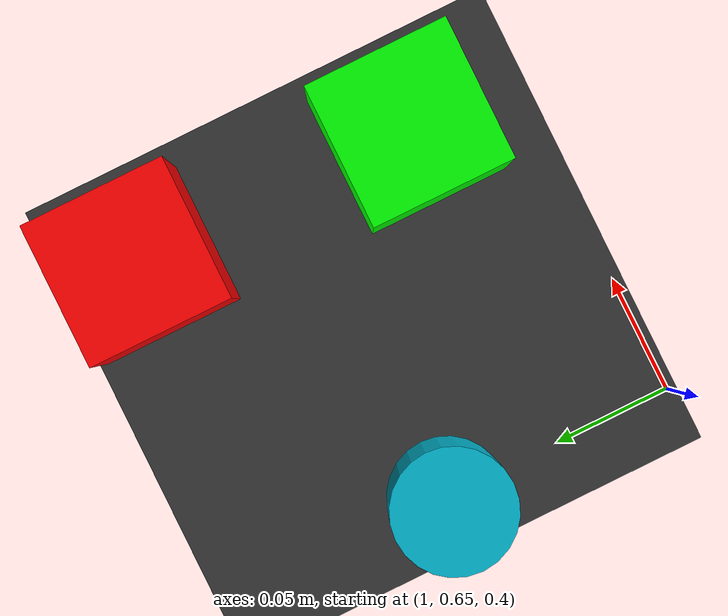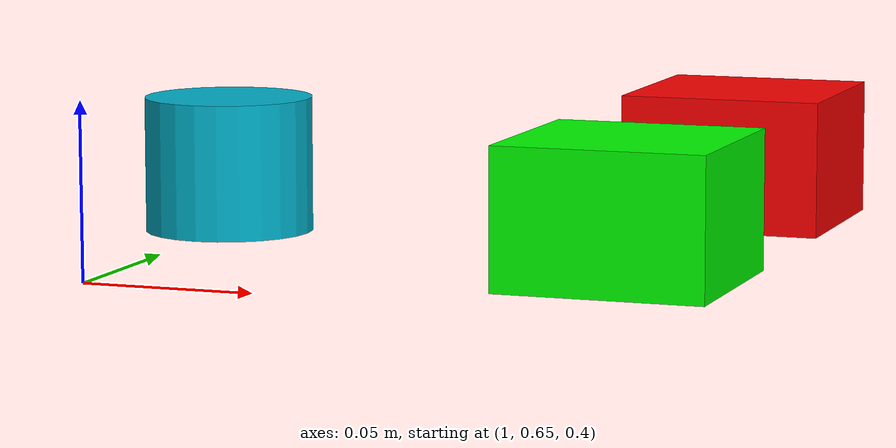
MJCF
<?xml version="1.0" encoding="utf-8"?>
<mujoco>
	<compiler angle="radian" coordinate="local" meshdir="../stls/fetch" texturedir="../textures"></compiler>
	<option timestep="0.002">
		<flag warmstart="enable"></flag>
	</option>
     <visual>
        <map znear="0.001" zfar="0.2"></map>
    </visual>
    <asset>
        <texture type="skybox" builtin="gradient" rgb1="0.44 0.85 0.56" rgb2="0.46 0.87 0.58" width="32" height="32"></texture>
        <texture name="texture_block" file="block.png" gridsize="3 4" gridlayout=".U..LFRB.D.."></texture>

        <material name="floor_mat" specular="0" shininess="0.5" reflectance="0" rgba="0.2 0.2 0.2 1"></material>
        <material name="table_mat" specular="0" shininess="0.5" reflectance="0" rgba="0.2 0.2 0.2 1"></material>
        <material name="block_mat" specular="0" shininess="0.5" reflectance="0" rgba="0.2 0.2 0.2 1"></material>
        <material name="puck_mat" specular="0" shininess="0.5" reflectance="0" rgba="0.2 0.2 0.2 1"></material>
        <material name="robot0:geomMat" shininess="0.03" specular="0.4"></material>
        <material name="robot0:gripper_finger_mat" shininess="0.03" specular="0.4" reflectance="0"></material>
        <material name="robot0:gripper_mat" shininess="0.03" specular="0.4" reflectance="0"></material>
        <material name="robot0:arm_mat" shininess="0.03" specular="0.4" reflectance="0"></material>
        <material name="robot0:head_mat" shininess="0.03" specular="0.4" reflectance="0"></material>
        <material name="robot0:torso_mat" shininess="0.03" specular="0.4" reflectance="0"></material>
        <material name="robot0:base_mat" shininess="0.03" specular="0.4" reflectance="0"></material>

        <mesh file="base_link_collision.stl" name="robot0:base_link"></mesh>
        <mesh file="bellows_link_collision.stl" name="robot0:bellows_link"></mesh>
        <mesh file="elbow_flex_link_collision.stl" name="robot0:elbow_flex_link"></mesh>
        <mesh file="estop_link.stl" name="robot0:estop_link"></mesh>
        <mesh file="forearm_roll_link_collision.stl" name="robot0:forearm_roll_link"></mesh>
        <mesh file="gripper_link.stl" name="robot0:gripper_link"></mesh>
        <mesh file="head_pan_link_collision.stl" name="robot0:head_pan_link"></mesh>
        <mesh file="head_tilt_link_collision.stl" name="robot0:head_tilt_link"></mesh>
        <mesh file="l_wheel_link_collision.stl" name="robot0:l_wheel_link"></mesh>
        <mesh file="laser_link.stl" name="robot0:laser_link"></mesh>
        <mesh file="r_wheel_link_collision.stl" name="robot0:r_wheel_link"></mesh>
        <mesh file="torso_lift_link_collision.stl" name="robot0:torso_lift_link"></mesh>
        <mesh file="shoulder_pan_link_collision.stl" name="robot0:shoulder_pan_link"></mesh>
        <mesh file="shoulder_lift_link_collision.stl" name="robot0:shoulder_lift_link"></mesh>
        <mesh file="upperarm_roll_link_collision.stl" name="robot0:upperarm_roll_link"></mesh>
        <mesh file="wrist_flex_link_collision.stl" name="robot0:wrist_flex_link"></mesh>
        <mesh file="wrist_roll_link_collision.stl" name="robot0:wrist_roll_link"></mesh>
        <mesh file="torso_fixed_link.stl" name="robot0:torso_fixed_link"></mesh>
    </asset>

    <equality>
        <weld body1="robot0:mocap" body2="robot0:gripper_link" solimp="0.9 0.95 0.001" solref="0.02 1"></weld>
    </equality>

    <contact>
        <exclude body1="robot0:r_gripper_finger_link" body2="robot0:l_gripper_finger_link"></exclude>
        <exclude body1="robot0:torso_lift_link" body2="robot0:torso_fixed_link"></exclude>
        <exclude body1="robot0:torso_lift_link" body2="robot0:shoulder_pan_link"></exclude>
    </contact>

    <default>
        <default class="robot0:fetch">
            <geom margin="0.001" material="robot0:geomMat" rgba="0 0 0 0" solimp="0.99 0.99 0.01" solref="0.01 1" type="mesh" user="0"></geom>
            <joint armature="1" damping="50" frictionloss="0" stiffness="0"></joint>

            <default class="robot0:fetchGripper">
                <geom condim="4" margin="0.001" type="box" user="0" rgba="0 0 0 0"></geom>
                <joint armature="100" damping="1000" limited="true" solimplimit="0.99 0.999 0.01" solreflimit="0.01 1" type="slide"></joint>
            </default>

            <default class="robot0:grey">
                <geom rgba="0 0 0 0"></geom>
            </default>
            <default class="robot0:blue">
                <geom rgba="0 0 0 0"></geom>
            </default>
        </default>
    </default>

	<worldbody>
		<geom name="floor0" pos="0.8 0.75 0" size="0.85 0.70 1" type="plane" condim="3" material="floor_mat"></geom>
		<body name="floor0" pos="0.8 0.75 0">
			<site name="target0" pos="0 0 0.5" size="0.02 0.02 0.02" rgba="0 0 0 0" type="sphere"></site>
		</body>

		<body mocap="true" name="robot0:mocap" pos="0 0 0">
            <geom conaffinity="0" contype="0" pos="0 0 0" rgba="0 0 0 0" size="0.005 0.005 0.005" type="box"></geom>
            <geom conaffinity="0" contype="0" pos="0 0 0" rgba="0 0 0 0" size="1 0.005 0.005" type="box"></geom>
            <geom conaffinity="0" contype="0" pos="0 0 0" rgba="0 0 0 0" size="0.005 1 0.001" type="box"></geom>
        <geom conaffinity="0" contype="0" pos="0 0 0" rgba="0 0 0 0" size="0.005 0.005 1" type="box"></geom>
        </body>
        <body childclass="robot0:fetch" name="robot0:base_link" pos="0.2869 0.2641 0">
            <joint armature="0.0001" axis="1 0 0" damping="1e+11" name="robot0:slide0" pos="0 0 0" type="slide"></joint>
            <joint armature="0.0001" axis="0 1 0" damping="1e+11" name="robot0:slide1" pos="0 0 0" type="slide"></joint>
            <joint armature="0.0001" axis="0 0 1" damping="1e+11" name="robot0:slide2" pos="0 0 0" type="slide"></joint>
            <inertial diaginertia="1.2869 1.2236 0.9868" mass="70.1294" pos="-0.0036 0 0.0014" quat="0.7605 -0.0133 -0.0061 0.6491"></inertial>
            <geom mesh="robot0:base_link" name="robot0:base_link" material="robot0:base_mat" class="robot0:grey"></geom>
            <body name="robot0:torso_lift_link" pos="-0.0869 0 0.3774">
                <inertial diaginertia="0.3365 0.3354 0.0943" mass="10.7796" pos="-0.0013 -0.0009 0.2935" quat="0.9993 -0.0006 0.0336 0.0185"></inertial>
                <joint axis="0 0 1" damping="1e+07" name="robot0:torso_lift_joint" range="0.0386 0.3861" type="slide"></joint>
                <geom mesh="robot0:torso_lift_link" name="robot0:torso_lift_link" material="robot0:torso_mat"></geom>
                <body name="robot0:head_pan_link" pos="0.0531 0 0.603">
                    <inertial diaginertia="0.0185 0.0128 0.0095" mass="2.2556" pos="0.0321 0.0161 0.039" quat="0.5148 0.5451 -0.453 0.4823"></inertial>
                    <joint axis="0 0 1" name="robot0:head_pan_joint" range="-1.57 1.57"></joint>
                    <geom mesh="robot0:head_pan_link" name="robot0:head_pan_link" material="robot0:head_mat" class="robot0:grey"></geom>
                    <body name="robot0:head_tilt_link" pos="0.1425 0 0.058">
                        <inertial diaginertia="0.0063 0.0059 0.0014" mass="0.9087" pos="0.0081 0.0025 0.0113" quat="0.6458 0.66 -0.274 0.2689"></inertial>
                        <joint axis="0 1 0" damping="1000" name="robot0:head_tilt_joint" range="-0.76 1.45" ref="0.06"></joint>
                        <geom mesh="robot0:head_tilt_link" name="robot0:head_tilt_link" material="robot0:head_mat" class="robot0:blue"></geom>
                        <body name="robot0:head_camera_link" pos="0.055 0 0.0225">
                            <inertial diaginertia="0 0 0" mass="0" pos="0.055 0 0.0225"></inertial>
                            <body name="robot0:head_camera_rgb_frame" pos="0 0.02 0">
                                <inertial diaginertia="0 0 0" mass="0" pos="0 0.02 0"></inertial>
                                <body name="robot0:head_camera_rgb_optical_frame" pos="0 0 0" quat="0.5 -0.5 0.5 -0.5">
                                    <inertial diaginertia="0 0 0" mass="0" pos="0 0 0" quat="0.5 -0.5 0.5 -0.5"></inertial>
                                    <camera euler="3.1415 0 0" fovy="50" name="head_camera_rgb" pos="0 0 0"></camera>
                                </body>
                            </body>
                            <body name="robot0:head_camera_depth_frame" pos="0 0.045 0">
                                <inertial diaginertia="0 0 0" mass="0" pos="0 0.045 0"></inertial>
                                <body name="robot0:head_camera_depth_optical_frame" pos="0 0 0" quat="0.5 -0.5 0.5 -0.5">
                                    <inertial diaginertia="0 0 0" mass="0" pos="0 0 0" quat="0.5 -0.5 0.5 -0.5"></inertial>
                                </body>
                            </body>
                        </body>
                    </body>
                </body>
                <body name="robot0:shoulder_pan_link" pos="0.1195 0 0.3486">
                    <inertial diaginertia="0.009 0.0086 0.0041" mass="2.5587" pos="0.0927 -0.0056 0.0564" quat="-0.1364 0.7624 -0.1562 0.613"></inertial>
                    <joint axis="0 0 1" name="robot0:shoulder_pan_joint" range="-1.6056 1.6056"></joint>
                    <geom mesh="robot0:shoulder_pan_link" name="robot0:shoulder_pan_link" material="robot0:arm_mat"></geom>
                    <body name="robot0:shoulder_lift_link" pos="0.117 0 0.06">
                        <inertial diaginertia="0.0116 0.0112 0.0023" mass="2.6615" pos="0.1432 0.0072 -0.0001" quat="0.4382 0.4382 0.555 0.555"></inertial>
                        <joint axis="0 1 0" name="robot0:shoulder_lift_joint" range="-1.221 1.518"></joint>
                        <geom mesh="robot0:shoulder_lift_link" name="robot0:shoulder_lift_link" material="robot0:arm_mat" class="robot0:blue"></geom>
                        <body name="robot0:upperarm_roll_link" pos="0.219 0 0">
                            <inertial diaginertia="0.0047 0.0045 0.0019" mass="2.3311" pos="0.1165 0.0014 0" quat="-0.0136 0.707 0.0136 0.707"></inertial>
                            <joint axis="1 0 0" limited="false" name="robot0:upperarm_roll_joint"></joint>
                            <geom mesh="robot0:upperarm_roll_link" name="robot0:upperarm_roll_link" material="robot0:arm_mat"></geom>
                            <body name="robot0:elbow_flex_link" pos="0.133 0 0">
                                <inertial diaginertia="0.0086 0.0084 0.002" mass="2.1299" pos="0.1279 0.0073 0" quat="0.4332 0.4332 0.5589 0.5589"></inertial>
                                <joint axis="0 1 0" name="robot0:elbow_flex_joint" range="-2.251 2.251"></joint>
                                <geom mesh="robot0:elbow_flex_link" name="robot0:elbow_flex_link" material="robot0:arm_mat" class="robot0:blue"></geom>
                                <body name="robot0:forearm_roll_link" pos="0.197 0 0">
                                    <inertial diaginertia="0.0035 0.0031 0.0015" mass="1.6563" pos="0.1097 -0.0266 0" quat="-0.0715 0.7035 0.0715 0.7035"></inertial>
                                    <joint armature="2.7538" axis="1 0 0" damping="3.5247" frictionloss="0" limited="false" name="robot0:forearm_roll_joint" stiffness="10"></joint>
                                    <geom mesh="robot0:forearm_roll_link" name="robot0:forearm_roll_link" material="robot0:arm_mat"></geom>
                                    <body name="robot0:wrist_flex_link" pos="0.1245 0 0">
                                        <inertial diaginertia="0.0042 0.0042 0.0018" mass="1.725" pos="0.0882 0.0009 -0.0001" quat="0.4895 0.4895 0.5103 0.5103"></inertial>
                                        <joint axis="0 1 0" name="robot0:wrist_flex_joint" range="-2.16 2.16"></joint>
                                        <geom mesh="robot0:wrist_flex_link" name="robot0:wrist_flex_link" material="robot0:arm_mat" class="robot0:blue"></geom>
                                        <body name="robot0:wrist_roll_link" pos="0.1385 0 0">
                                            <inertial diaginertia="0.0001 0.0001 0.0001" mass="0.1354" pos="0.0095 0.0004 -0.0002"></inertial>
                                            <joint axis="1 0 0" limited="false" name="robot0:wrist_roll_joint"></joint>
                                            <geom mesh="robot0:wrist_roll_link" name="robot0:wrist_roll_link" material="robot0:arm_mat"></geom>
                                            <body euler="0 0 0" name="robot0:gripper_link" pos="0.1664 0 0">
                                                <inertial diaginertia="0.0024 0.0019 0.0013" mass="1.5175" pos="-0.09 -0.0001 -0.0017" quat="0 0.7071 0 0.7071"></inertial>
                                                <geom mesh="robot0:gripper_link" name="robot0:gripper_link" material="robot0:gripper_mat"></geom>
                                                <body name="robot0:gripper_camera_link" pos="0.055 0 0.0225">
                                                    <body name="robot0:gripper_camera_rgb_frame" pos="0 0.02 0">
                                                        <body name="robot0:gripper_camera_rgb_optical_frame" pos="0 0 0" quat="0.5 -0.5 0.5 -0.5">
                                                            <camera euler="3.1415 0 0" fovy="50" name="gripper_camera_rgb" pos="0 0 0"></camera>
                                                        </body>
                                                    </body>
                                                    <body name="robot0:gripper_camera_depth_frame" pos="0 0.045 0">
                                                        <body name="robot0:gripper_camera_depth_optical_frame" pos="0 0 0" quat="0.5 -0.5 0.5 -0.5"></body>
                                                    </body>
                                                </body>

                                                <body childclass="robot0:fetchGripper" name="robot0:r_gripper_finger_link" pos="0 0.0159 0">
                                                    <inertial diaginertia="0.1 0.1 0.1" mass="4" pos="-0.01 0 0"></inertial>
                                                    <joint axis="0 1 0" name="robot0:r_gripper_finger_joint" range="0 0.05"></joint>
                                                    <geom pos="0 -0.008 0" size="0.0385 0.007 0.0135" type="box" name="robot0:r_gripper_finger_link" material="robot0:gripper_finger_mat" condim="4" friction="1 0.05 0.01"></geom>
                                                </body>
                                                <body childclass="robot0:fetchGripper" name="robot0:l_gripper_finger_link" pos="0 -0.0159 0">
                                                    <inertial diaginertia="0.1 0.1 0.1" mass="4" pos="-0.01 0 0"></inertial>
                                                    <joint axis="0 -1 0" name="robot0:l_gripper_finger_joint" range="0 0.05"></joint>
                                                    <geom pos="0 0.008 0" size="0.0385 0.007 0.0135" type="box" name="robot0:l_gripper_finger_link" material="robot0:gripper_finger_mat" condim="4" friction="1 0.05 0.01"></geom>
                                                </body>
                                                <site name="robot0:grip" pos="0.02 0 0" rgba="0 0 0 0" size="0.02 0.02 0.02"></site>
                                            </body>
                                        </body>
                                    </body>
                                </body>
                            </body>
                        </body>
                    </body>
                </body>
            </body>
            <body name="robot0:estop_link" pos="-0.1246 0.2389 0.3113" quat="0.7071 0.7071 0 0">
                <inertial diaginertia="0 0 0" mass="0.002" pos="0.0024 -0.0033 0.0067" quat="0.3774 -0.1814 0.1375 0.8977"></inertial>
                <geom mesh="robot0:estop_link" rgba="0 0 0 0" name="robot0:estop_link"></geom>
            </body>
            <body name="robot0:laser_link" pos="0.235 0 0.2878" quat="0 1 0 0">
                <inertial diaginertia="0 0 0" mass="0.0083" pos="-0.0306 0.0007 0.0552" quat="0.5878 0.5378 -0.4578 0.3945"></inertial>
                <geom mesh="robot0:laser_link" rgba="0 0 0 0" name="robot0:laser_link"></geom>
                <camera euler="1.55 -1.55 3.14" fovy="25" name="lidar" pos="0 0 0.02"></camera>
            </body>
            <body name="robot0:torso_fixed_link" pos="-0.0869 0 0.3774">
                <inertial diaginertia="0.3865 0.3394 0.1009" mass="13.2775" pos="-0.0722 0.0057 0.2656" quat="0.9995 0.0249 0.0177 0.011"></inertial>
                <geom mesh="robot0:torso_fixed_link" name="robot0:torso_fixed_link" class="robot0:blue"></geom>
            </body>
        </body>

		<body pos="1.3 0.75 0.2" name="table0">
			<geom rgba="0 0 0 0" size="10 0.35 0.2" type="box" mass="2000" material="table_mat"></geom>
		</body>
		<body name="sidecamera_target" pos="1 0.75 0.4">
			<site name="sidecamera_target" pos="0 0 0" size="0.1 0.1 0.1" rgba="0 0 0 0" type="sphere"></site>
		</body>

        <body name="arenaboundary" pos="1.06 0.75 0.4">
            <site name="arenaright" pos="0 0.2 0" size="0.2 0.005 0.005" rgba="0 0 0 0" type="box"></site>
            <site name="arenaleft" pos="0 -0.2 0" size="0.2 0.005 0.005" rgba="0 0 0 0" type="box"></site>
            <site name="arenatop" pos="-0.2 0 0" size="0.005 0.2 0.005" rgba="0 0 0 0" type="box"></site>
            <site name="arenabottom" pos="0.2 0 0" size="0.005 0.2 0.005" rgba="0 0 0 0" type="box"></site>
            <site name="spawn" pos="0 0 0" size="0.1 0.005" rgba="0 0 0 0" type="cylinder"></site>
        </body>
        <body name="arenacenter" pos="1.06 0.75 0.42">
            <site name="arenacenter"  size="0.02 0.02 0.02" rgba="0 0 0 0" type="sphere"></site>
        </body>

        <body name="object0" pos="1 0.75 0.42">
			<joint name="object0:joint" type="free" damping="0.01"></joint>
			<geom size="0.025 0.02" type="cylinder" condim="3" name="object0" rgba="0 0.7 0.8 1" material="block_mat" mass="2" friction="1.9 0.005 0.0001" quat="1 0 0 0"></geom>
			<site name="object0" pos="0 0 0" size="0.02 0.02 0.02" rgba="1 0 0 0" type="sphere"></site>
        </body>

        <body name="object1" pos="1.14 0.82 0.42">
            <joint name="object1:joint" type="free" damping="0.01"></joint>
            <geom size="0.03 0.03 0.02" type="box" condim="3" name="object1" rgba="1 0 0 1" material="block_mat" mass="2" friction="1.9 0.005 0.0001"></geom>
            <site name="object1" pos="0 0 0" size="0.02 0.02 0.02" rgba="1 0 0 0" type="sphere"></site>
		</body>

        <body name="object2" pos="1.14 0.7 0.42">
            <joint name="object2:joint" type="free" damping="0.01"></joint>
            <geom size="0.03 0.03 0.02" type="box" condim="3" name="object2" rgba="0 1 0 1" material="block_mat" mass="2" friction="1.9 0.005 0.0001"></geom>
            <site name="object2" pos="0 0 0" size="0.02 0.02 0.02" rgba="1 0 0 0" type="sphere"></site>
        </body>

		<light directional="true" ambient="0.2 0.2 0.2" diffuse="0.8 0.8 0.8" specular="0.3 0.3 0.3" castshadow="false" pos="0 0 4" dir="0 0 -1" name="light0"></light>

        <camera mode="targetbody" fovy="43.3" name="object_sidecamera" pos="0.7 0.75 0.65" target="arenacenter"></camera>
        <camera mode="targetbody" fovy="43.3" name="object_bottomcamera" pos="1.1 0.75 -0.05" target="arenacenter"></camera>
        <camera mode="targetbody" fovy="43.3" name="external_camera_0"  pos="1.9 0.75 0.65" target="arenacenter" ></camera>
        <camera mode="targetbody" fovy="43.3" name="external_camera_1"  pos="1.3 0.15 0.65" target="arenacenter" ></camera>
        <camera mode="targetbody" fovy="43.3" name="external_camera_2"  pos="1.3 1.35 0.65" target="arenacenter" ></camera>

	</worldbody>

	<actuator></actuator>
</mujoco>
